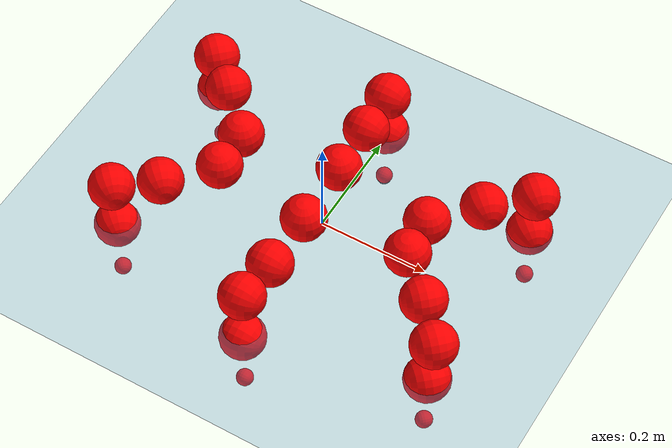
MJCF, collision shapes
<mujoco model="Golem">
  <compiler angle="radian" assetdir="assets" balanceinertia="true" inertiafromgeom="false"/>

  <option timestep="0.005" density="1.2" viscosity="2e-05"/>

  <size nkey="1"/>

  <visual>
    <quality shadowsize="8192"/>
    <map shadowclip="0.5"/>
  </visual>

  <default>
    <default class="/">
      <joint armature="0.01" damping="0.01" frictionloss="0.01"/>
      <geom contype="0" conaffinity="0" group="1" solref="-1000 -80"/>
      <site size="0.01 0.005 0.005" group="5"/>
      <general forcelimited="true" biastype="affine" gainprm="25" biasprm="0 -25 -0.5"/>
      <default class="visual">
        <geom type="mesh" group="2"/>
      </default>
      <default class="collision">
        <geom group="3"/>
      </default>
      <default class="foot">
        <geom size="0.01 0 0" condim="6" group="4" priority="1" solimp="0.015 1 0.01"/>
      </default>
      <default class="reward_collision_sphere">
        <geom group="5" rgba="1 0 0 1"/>
      </default>
    </default>
  </default>

  <asset>
    <texture type="skybox" colorspace="auto" name="//unnamed_texture_0" builtin="gradient" rgb1="0.95 0.95 0.95" rgb2="0.95 0.95 0.95" width="100" height="600"/>
    <texture type="2d" colorspace="auto" name="texplane" builtin="checker" rgb1="0.345 0.575 0.748" rgb2="0.345 0.575 0.748" markrgb="1 1 1" width="512" height="512"/>
    <material name="MatPlane" class="/" texture="texplane" texuniform="true" texrepeat="2 2" specular="0.9"/>
    <mesh name="body" class="/" file="body.stl" scale="0.001 0.001 0.001"/>
    <mesh name="coxa" class="/" file="coxa.stl" scale="0.001 0.001 0.001"/>
    <mesh name="femur" class="/" file="femur.stl" scale="0.001 0.001 0.001"/>
    <mesh name="tibia" class="/" file="tibia.stl" scale="0.001 0.001 0.001"/>
    <mesh name="tarsus" class="/" file="tarsus.stl" scale="0.001 0.001 0.001"/>
  </asset>

  <worldbody>
    <geom name="floor" class="/" size="100 100 0.125" type="plane" group="0" material="MatPlane"/>
    <light name="toplight_shadow" class="/" pos="0 0 5" dir="0.0990148 0.0990148 -0.990148" type="directional" ambient="0.04 0.04 0.04" diffuse="0.55 0.55 0.55" specular="0.12 0.12 0.12"/>
    <light name="toplight_fill" class="/" pos="0 0 5" dir="0.0990148 0.0990148 -0.990148" type="directional" castshadow="false" ambient="0.04 0.04 0.04" diffuse="0.3 0.3 0.3" specular="0.08 0.08 0.08"/>
    <body name="trunk" pos="0.000818284 0.00205388 0.00750899" quat="1 -0.000335376 0.000252376 2.20585e-05">
      <inertial pos="-0.00111677 -0.000396998 -0.00703084" quat="0.999836 0.00691092 -0.0160914 -0.00459296" mass="3.87796" diaginertia="0.0262141 0.002259 0.0202169"/>
      <joint name="//unnamed_joint_0" type="free"/>
      <geom name="//unnamed_geom_1" class="/" pos="0 0 0.0733138" quat="1 0 0 0" type="mesh" rgba="0.9 0.9 0.9 1" mesh="body"/>
      <site name="imu" class="/" pos="0.164232 -0.0107462 0.120212" size="0.0102478"/>
      <camera name="track" class="/" pos="0 -1.49153 0" quat="0.707107 0.707107 0 0" mode="trackcom"/>
      <camera name="ego_camera" class="/" pos="0.153796 0 0.114553" quat="-0.5 -0.5 0.5 0.5"/>
      <body name="coxa_RR" pos="-0.208229 -0.063723 0.0773799" quat="0.382514 -0.00043046 -0.000674174 -0.923949">
        <inertial pos="-0.000124457 0.00724901 0.002195" quat="0.999962 0.00541161 0.00156941 -0.00663032" mass="0.238335" diaginertia="0.0267837 0.00237675 0.022095"/>
        <joint name="coxa_joint_RR" class="/" pos="0 0 0" axis="-0.0434937 0.0107584 -0.998996" range="-3.1422 3.20016" armature="0.0112032" damping="0.0203699" frictionloss="0.011347"/>
        <geom name="//unnamed_geom_2" class="/" type="mesh" rgba="0.2 0.2 0.2 1" mesh="coxa"/>
        <geom name="//unnamed_geom_3" class="reward_collision_sphere" size="0.0409913" pos="-0.0354915 0 0"/>
        <body name="femur_RR" pos="0.0682574 0.00212741 -0.00720589" quat="0.50024 -0.500089 0.500412 0.499258">
          <inertial pos="-0.00177429 -0.00186564 0.00162668" quat="0.999998 0.000859136 -0.00166229 1.8535e-05" mass="0.206911" diaginertia="0.0223786 0.00226742 0.019368"/>
          <joint name="femur_joint_RR" class="/" pos="0 0 0" axis="0.000934199 0.000456857 -0.999999" stiffness="0.00342342" range="-3.11221 3.26644" armature="0.0117666" damping="0.0297028" frictionloss="0.00847417"/>
          <geom name="//unnamed_geom_4" class="/" type="mesh" rgba="0.9 0.9 0.9 1" mesh="femur"/>
          <geom name="//unnamed_geom_5" class="reward_collision_sphere" size="0.0409913"/>
          <body name="tibia_RR" pos="-0.0063346 -0.0837914 -0.00308823" quat="-5.65533e-05 1 0.00056379 -0.000382426">
            <inertial pos="0.00547666 0.00252002 -0.000223613" quat="0.9998 -0.0179614 0.00864036 0.00131477" mass="0.214828" diaginertia="0.0238361 0.00219281 0.0187477"/>
            <joint name="tibia_joint_RR" class="/" pos="0 0 0" axis="0.00694835 0.00160739 0.999975" range="-2.99853 3.1406" armature="0.012014" damping="0.0200465" frictionloss="0.0113534"/>
            <geom name="//unnamed_geom_6" class="/" type="mesh" rgba="0.2 0.2 0.2 1" mesh="tibia"/>
            <geom name="//unnamed_geom_7" class="reward_collision_sphere" size="0.0409913"/>
            <body name="tarsus_RR" pos="0.104023 -0.00213313 -0.00120555" quat="1 -0.000265832 0.000366977 -0.000396805">
              <inertial pos="0.0751603 -0.00606935 0.00361413" quat="0.50049 0.500195 0.499664 0.499651" mass="0.222676" diaginertia="0.0233793 0.00232272 0.0200565"/>
              <joint name="tarsus_joint_RR" class="/" pos="0 0 0" axis="0.00454748 -0.0101884 0.999938" stiffness="0.0385364" range="-3.09277 3.12632" armature="0.00810542" damping="0.0172786" frictionloss="0.00800455"/>
              <geom name="//unnamed_geom_8" class="/" type="mesh" rgba="0.9 0.9 0.9 1" mesh="tarsus"/>
              <geom name="foot_1" class="foot" size="0.0114012" pos="0.132502 0 0" quat="0 -0.707107 0 0.707107"/>
              <geom name="//unnamed_geom_10" class="reward_collision_sphere" size="0.0409913"/>
              <geom name="//unnamed_geom_11" class="reward_collision_sphere" size="0.0153717" pos="0.127178 0 0"/>
              <site name="foot_1" class="foot" pos="0.132502 0 0" quat="0 -0.707107 0 0.707107" size="0.0102478"/>
            </body>
          </body>
        </body>
      </body>
      <body name="coxa_RM" pos="-0.000720535 -0.0990645 0.0807295" quat="0.706998 -0.00157389 -0.00365939 -0.707204">
        <inertial pos="0.00563839 -0.000335465 0.000668145" quat="0.999945 0.00148816 -0.000145809 0.0104023" mass="0.223467" diaginertia="0.0251582 0.00241893 0.0194324"/>
        <joint name="coxa_joint_RM" class="/" pos="0 0 0" axis="-0.00298757 -0.000265579 -0.999996" stiffness="0.000930397" range="-2.97641 3.13475" armature="0.00979897" damping="0" frictionloss="0.00992018"/>
        <geom name="//unnamed_geom_12" class="/" type="mesh" rgba="0.2 0.2 0.2 1" mesh="coxa"/>
        <geom name="//unnamed_geom_13" class="reward_collision_sphere" size="0.0409913" pos="-0.0354915 0 0"/>
        <body name="femur_RM" pos="0.0723636 -0.000387082 -0.00141174" quat="0.498039 -0.499093 0.501677 0.501183">
          <inertial pos="-0.000909782 0.000109747 -0.000178244" quat="0.999592 0.0201839 0.0157758 0.0126373" mass="0.201166" diaginertia="0.0219718 0.00229086 0.0181035"/>
          <joint name="femur_joint_RM" class="/" pos="0 0 0" axis="-0.00979063 -0.000973586 -0.999952" stiffness="0.0360474" range="-3.16559 3.13146" armature="0.0113022" damping="0.018527" frictionloss="0.0103012"/>
          <geom name="//unnamed_geom_14" class="/" type="mesh" rgba="0.9 0.9 0.9 1" mesh="femur"/>
          <geom name="//unnamed_geom_15" class="reward_collision_sphere" size="0.0409913"/>
          <body name="tibia_RM" pos="0.00296907 -0.0773983 -0.00596203" quat="0.00061715 0.999999 -0.000529917 -0.000768528">
            <inertial pos="-0.00105328 -0.00882499 0.00207227" quat="0.999968 0.00516536 0.000940695 0.00598491" mass="0.197136" diaginertia="0.0214659 0.00209655 0.0175165"/>
            <joint name="tibia_joint_RM" class="/" pos="0 0 0" axis="0.00861752 -0.00626551 0.999943" range="-3.20603 3.31968" armature="0.0094185" damping="0.0389339" frictionloss="0.0112483"/>
            <geom name="//unnamed_geom_16" class="/" type="mesh" rgba="0.2 0.2 0.2 1" mesh="tibia"/>
            <geom name="//unnamed_geom_17" class="reward_collision_sphere" size="0.0409913"/>
            <body name="tarsus_RM" pos="0.10942 0.00632215 -0.00152209" quat="0.999998 -0.000158799 -0.000654936 -0.0017234">
              <inertial pos="0.0708418 -0.00767554 0.000410875" quat="0.499768 0.49978 0.50073 0.499722" mass="0.247885" diaginertia="0.0241033 0.00246069 0.0208928"/>
              <joint name="tarsus_joint_RM" class="/" pos="0 0 0" axis="-0.00893262 0.00111486 0.999959" range="-3.16426 3.10373" armature="0.00916712" damping="0" frictionloss="0.00998112"/>
              <geom name="//unnamed_geom_18" class="/" type="mesh" rgba="0.9 0.9 0.9 1" mesh="tarsus"/>
              <geom name="foot_2" class="foot" size="0.0102564" pos="0.132502 0 0" quat="0 -0.707107 0 0.707107"/>
              <geom name="//unnamed_geom_20" class="reward_collision_sphere" size="0.0409913"/>
              <geom name="//unnamed_geom_21" class="reward_collision_sphere" size="0.0153717" pos="0.127178 0 0"/>
              <site name="foot_2" class="foot" pos="0.132502 0 0" quat="0 -0.707107 0 0.707107" size="0.0102478"/>
            </body>
          </body>
        </body>
      </body>
      <body name="coxa_RF" pos="0.208199 -0.0622114 0.0791563" quat="0.923494 -0.0003309 -0.000809592 -0.383612">
        <inertial pos="0.00616811 0.00155069 -0.00480474" quat="0.999953 0.00969956 0.000537943 -0.000310734" mass="0.192838" diaginertia="0.0212785 0.00228042 0.0181715"/>
        <joint name="coxa_joint_RF" class="/" pos="0 0 0" axis="-0.00489834 0.00992663 -0.999939" range="-3.09563 3.13839" armature="0.0127783" damping="0" frictionloss="0.00895051"/>
        <geom name="//unnamed_geom_22" class="/" type="mesh" rgba="0.2 0.2 0.2 1" mesh="coxa"/>
        <geom name="//unnamed_geom_23" class="reward_collision_sphere" size="0.0409913" pos="-0.0354915 0 0"/>
        <body name="femur_RF" pos="0.0632542 -0.000628899 0.00323635" quat="0.499397 -0.499443 0.502455 0.498697">
          <inertial pos="-0.00204998 0.00072219 0.0019989" quat="0.999943 0.00531416 -0.0092078 0.000789139" mass="0.253795" diaginertia="0.0233854 0.00252868 0.0223801"/>
          <joint name="femur_joint_RF" class="/" pos="0 0 0" axis="0.00397981 0.00792715 -0.999961" stiffness="0.0389091" range="-3.14173 3.2771" armature="0.0143738" damping="0.0184038" frictionloss="0.0144295"/>
          <geom name="//unnamed_geom_24" class="/" type="mesh" rgba="0.9 0.9 0.9 1" mesh="femur"/>
          <geom name="//unnamed_geom_25" class="reward_collision_sphere" size="0.0409913"/>
          <body name="tibia_RF" pos="0.000420581 -0.0878586 -0.00759359" quat="0.000215024 1 0.000181361 -7.23448e-05">
            <inertial pos="0.00641513 -0.00124688 0.000598967" quat="0.999952 0.00446289 -0.00112504 0.00862765" mass="0.22856" diaginertia="0.0252865 0.00238503 0.020427"/>
            <joint name="tibia_joint_RF" class="/" pos="0 0 0" axis="-0.00726957 -0.00279646 0.99997" stiffness="0.00442492" range="-3.1917 3.17302" armature="0.0107755" damping="0.0350383" frictionloss="0.00916686"/>
            <geom name="//unnamed_geom_26" class="/" type="mesh" rgba="0.2 0.2 0.2 1" mesh="tibia"/>
            <geom name="//unnamed_geom_27" class="reward_collision_sphere" size="0.0409913"/>
            <body name="tarsus_RF" pos="0.101356 -0.00119688 0.00619308" quat="0.999998 -0.00152976 -0.000148217 0.000913046">
              <inertial pos="0.0767427 0.00209007 -0.00178858" quat="0.521908 0.51954 0.470341 0.486282" mass="0.223048" diaginertia="0.0236242 0.00224297 0.0219463"/>
              <joint name="tarsus_joint_RF" class="/" pos="0 0 0" axis="-0.00808677 0.00259488 0.999964" stiffness="0.00497354" range="-3.1651 3.12921" armature="0.0138577" damping="0.00672612" frictionloss="0.0130408"/>
              <geom name="//unnamed_geom_28" class="/" type="mesh" rgba="0.9 0.9 0.9 1" mesh="tarsus"/>
              <geom name="foot_3" class="foot" size="0.0101169" pos="0.132502 0 0" quat="0 -0.707107 0 0.707107"/>
              <geom name="//unnamed_geom_30" class="reward_collision_sphere" size="0.0409913"/>
              <geom name="//unnamed_geom_31" class="reward_collision_sphere" size="0.0153717" pos="0.127178 0 0"/>
              <site name="foot_3" class="foot" pos="0.132502 0 0" quat="0 -0.707107 0 0.707107" size="0.0102478"/>
            </body>
          </body>
        </body>
      </body>
      <body name="coxa_LR" pos="-0.21218 0.0621368 0.0789439" quat="0.38223 -0.000243003 0.000190536 0.924067">
        <inertial pos="0.000156144 0.000739859 -0.00146322" quat="0.999344 0.00106639 -0.00544118 0.0357819" mass="0.206762" diaginertia="0.0233311 0.00210096 0.0196009"/>
        <joint name="coxa_joint_LR" class="/" pos="0 0 0" axis="0.00136809 0.00149374 -0.999998" range="-3.1611 3.12017" armature="0.00771118" damping="0.0225078" frictionloss="0.0103565"/>
        <geom name="//unnamed_geom_32" class="/" type="mesh" rgba="0.2 0.2 0.2 1" mesh="coxa"/>
        <geom name="//unnamed_geom_33" class="reward_collision_sphere" size="0.0409913" pos="-0.0354915 0 0"/>
        <body name="femur_LR" pos="0.075169 -0.00251226 -0.00460213" quat="0.498611 -0.499875 0.501119 0.500392">
          <inertial pos="0.00534335 0.00692994 -0.00688983" quat="0.999999 0.000129248 0.000842648 -0.000638051" mass="0.193307" diaginertia="0.0223274 0.0020927 0.0192371"/>
          <joint name="femur_joint_LR" class="/" pos="0 0 0" axis="-0.03703 0.00966365 0.999267" stiffness="0.00683584" range="-3.07059 3.2216" armature="0.00560923" damping="0.0241536" frictionloss="0.0129383"/>
          <geom name="//unnamed_geom_34" class="/" type="mesh" rgba="0.9 0.9 0.9 1" mesh="femur"/>
          <geom name="//unnamed_geom_35" class="reward_collision_sphere" size="0.0409913"/>
          <body name="tibia_LR" pos="-0.000440404 -0.076735 0.00298372" quat="0.0012366 0.999999 0.000231216 2.65151e-05">
            <inertial pos="-0.000186516 0.00694721 -0.000825104" quat="0.999975 0.00537754 -0.00462428 0.000652391" mass="0.23666" diaginertia="0.0249183 0.00235675 0.0225467"/>
            <joint name="tibia_joint_LR" class="/" pos="0 0 0" axis="-0.0194679 0.0255485 -0.999484" stiffness="0.0308942" range="-3.13739 3.26153" armature="0.0100198" damping="0.024357" frictionloss="0.00852015"/>
            <geom name="//unnamed_geom_36" class="/" type="mesh" rgba="0.2 0.2 0.2 1" mesh="tibia"/>
            <geom name="//unnamed_geom_37" class="reward_collision_sphere" size="0.0409913"/>
            <body name="tarsus_LR" pos="0.0957038 0.00637837 0.00250041" quat="0.999999 -0.00123478 0.000668923 -0.000672243">
              <inertial pos="0.0709986 -0.000463502 0.00430408" quat="0.496939 0.494018 0.50299 0.505963" mass="0.222935" diaginertia="0.0236382 0.00224448 0.0200935"/>
              <joint name="tarsus_joint_LR" class="/" pos="0 0 0" axis="-0.0204847 0.00772779 -0.99976" stiffness="0.0107054" range="-3.05458 3.10307" armature="0.0129931" damping="0.0299446" frictionloss="0.00931784"/>
              <geom name="//unnamed_geom_38" class="/" type="mesh" rgba="0.9 0.9 0.9 1" mesh="tarsus"/>
              <geom name="foot_4" class="foot" size="0.0104066" pos="0.132502 0 0" quat="0.707107 0 -0.707107 0"/>
              <geom name="//unnamed_geom_40" class="reward_collision_sphere" size="0.0409913"/>
              <geom name="//unnamed_geom_41" class="reward_collision_sphere" size="0.0153717" pos="0.127178 0 0"/>
              <site name="foot_4" class="foot" pos="0.132502 0 0" quat="0.707107 0 -0.707107 0" size="0.0102478"/>
            </body>
          </body>
        </body>
      </body>
      <body name="coxa_LM" pos="-0.00739831 0.100372 0.0713272" quat="0.70685 0.000358922 0.000408693 0.707364">
        <inertial pos="-0.00256032 0.000367315 0.00013301" quat="0.999971 -0.000131431 -0.00407931 0.00643337" mass="0.223452" diaginertia="0.0211693 0.00226869 0.0194545"/>
        <joint name="coxa_joint_LM" class="/" pos="0 0 0" axis="-0.0315046 -0.00325887 -0.999498" stiffness="0.00254368" range="-3.15471 2.97753" armature="0.0103333" damping="0.0210688" frictionloss="0.00981671"/>
        <geom name="//unnamed_geom_42" class="/" type="mesh" rgba="0.2 0.2 0.2 1" mesh="coxa"/>
        <geom name="//unnamed_geom_43" class="reward_collision_sphere" size="0.0409913" pos="-0.0354915 0 0"/>
        <body name="femur_LM" pos="0.0612673 0.00239848 0.00166695" quat="0.499359 -0.49919 0.499026 0.502417">
          <inertial pos="-0.00389808 -0.00219201 0.00329581" quat="0.99998 0.00300894 -0.00562993 -0.000301953" mass="0.185042" diaginertia="0.0214189 0.00215606 0.0175373"/>
          <joint name="femur_joint_LM" class="/" pos="0 0 0" axis="-0.00444122 0.0209495 0.999771" range="-3.0061 3.27037" armature="0.0104272" damping="0" frictionloss="0.00852466"/>
          <geom name="//unnamed_geom_44" class="/" type="mesh" rgba="0.9 0.9 0.9 1" mesh="femur"/>
          <geom name="//unnamed_geom_45" class="reward_collision_sphere" size="0.0409913"/>
          <body name="tibia_LM" pos="-0.00171834 -0.0815896 0.00344187" quat="-0.000251782 1 0.00027701 0.000206538">
            <inertial pos="-0.00328989 -0.00165319 0.00162622" quat="1 3.05766e-05 1.06985e-05 -0.000106778" mass="0.208117" diaginertia="0.022238 0.00246785 0.0186223"/>
            <joint name="tibia_joint_LM" class="/" pos="0 0 0" axis="-0.0011872 0.0161178 -0.999869" stiffness="0.0439175" range="-3.17307 3.1529" armature="0.0135516" damping="0.0343505" frictionloss="0.0094674"/>
            <geom name="//unnamed_geom_46" class="/" type="mesh" rgba="0.2 0.2 0.2 1" mesh="tibia"/>
            <geom name="//unnamed_geom_47" class="reward_collision_sphere" size="0.0409913"/>
            <body name="tarsus_LM" pos="0.0980994 0.00013631 0.000899328" quat="1 -0.000108011 0.000364551 -3.40728e-05">
              <inertial pos="0.0702445 -0.000625431 -0.00479331" quat="0.496112 0.49885 0.500026 0.504971" mass="0.218161" diaginertia="0.0255187 0.00217441 0.0196422"/>
              <joint name="tarsus_joint_LM" class="/" pos="0 0 0" axis="0.017018 -0.00055908 -0.999855" stiffness="0.0189737" range="-3.15043 3.18096" armature="0.00928644" damping="0" frictionloss="0.0104342"/>
              <geom name="//unnamed_geom_48" class="/" type="mesh" rgba="0.9 0.9 0.9 1" mesh="tarsus"/>
              <geom name="foot_5" class="foot" size="0.0135768" pos="0.132502 0 0" quat="0.707107 0 -0.707107 0"/>
              <geom name="//unnamed_geom_50" class="reward_collision_sphere" size="0.0409913"/>
              <geom name="//unnamed_geom_51" class="reward_collision_sphere" size="0.0153717" pos="0.127178 0 0"/>
              <site name="foot_5" class="foot" pos="0.132502 0 0" quat="0.707107 0 -0.707107 0" size="0.0102478"/>
            </body>
          </body>
        </body>
      </body>
      <body name="coxa_LF" pos="0.203183 0.0638147 0.0770093" quat="0.923962 0.000895925 -0.00332344 0.382468">
        <inertial pos="0.000173914 0.00138465 -0.00459496" quat="0.999987 0.00422618 0.0011808 -0.0025447" mass="0.215921" diaginertia="0.0224911 0.0025829 0.0199651"/>
        <joint name="coxa_joint_LF" class="/" pos="0 0 0" axis="0.0259023 0.0015553 -0.999663" stiffness="0.00092083" range="-3.10251 3.18367" armature="0.0112439" damping="0.018649" frictionloss="0.0128112"/>
        <geom name="//unnamed_geom_52" class="/" type="mesh" rgba="0.2 0.2 0.2 1" mesh="coxa"/>
        <geom name="//unnamed_geom_53" class="reward_collision_sphere" size="0.0409913" pos="-0.0354915 0 0"/>
        <body name="femur_LF" pos="0.0653304 0.00469624 0.0013501" quat="0.499934 -0.500181 0.499998 0.499886">
          <inertial pos="-0.00019797 0.00135303 -0.00670697" quat="0.99986 0.0142112 -0.00145272 0.00871648" mass="0.192265" diaginertia="0.0246486 0.00229124 0.0197472"/>
          <joint name="femur_joint_LF" class="/" pos="0 0 0" axis="0.0109832 -0.0179028 0.999779" range="-3.09549 3.15193" armature="0.0098306" damping="0.0147288" frictionloss="0.00725629"/>
          <geom name="//unnamed_geom_54" class="/" type="mesh" rgba="0.9 0.9 0.9 1" mesh="femur"/>
          <geom name="//unnamed_geom_55" class="reward_collision_sphere" size="0.0409913"/>
          <body name="tibia_LF" pos="-0.00160139 -0.0899486 -0.00513588" quat="0.00189733 0.999993 -0.00146716 -0.00279648">
            <inertial pos="0.00193329 -0.00311909 0.0046507" quat="0.999371 0.0183555 -0.0207316 -0.0221614" mass="0.197355" diaginertia="0.0217356 0.00227559 0.0195733"/>
            <joint name="tibia_joint_LF" class="/" pos="0 0 0" axis="0.000639971 -0.000608044 -1" stiffness="0.0266" range="-3.3158 3.12183" armature="0.00918927" damping="0" frictionloss="0.0102444"/>
            <geom name="//unnamed_geom_56" class="/" type="mesh" rgba="0.2 0.2 0.2 1" mesh="tibia"/>
            <geom name="//unnamed_geom_57" class="reward_collision_sphere" size="0.0409913"/>
            <body name="tarsus_LF" pos="0.0961785 -0.00489884 -0.000556966" quat="1 1.44437e-05 0.000653716 -0.00022614">
              <inertial pos="0.078629 0.000121127 0.00092098" quat="0.498053 0.502468 0.499101 0.500367" mass="0.231434" diaginertia="0.0247496 0.00248807 0.0187571"/>
              <joint name="tarsus_joint_LF" class="/" pos="0 0 0" axis="-0.0249012 -0.0141142 -0.99959" stiffness="0.024806" range="-3.13929 3.23822" armature="0.0068849" damping="0.0111015" frictionloss="0.00594107"/>
              <geom name="//unnamed_geom_58" class="/" type="mesh" rgba="0.9 0.9 0.9 1" mesh="tarsus"/>
              <geom name="foot_6" class="foot" size="0.010773" pos="0.132502 0 0" quat="0.707107 0 -0.707107 0"/>
              <geom name="//unnamed_geom_60" class="reward_collision_sphere" size="0.0409913"/>
              <geom name="//unnamed_geom_61" class="reward_collision_sphere" size="0.0153717" pos="0.127178 0 0"/>
              <site name="foot_6" class="foot" pos="0.132502 0 0" quat="0.707107 0 -0.707107 0" size="0.0102478"/>
            </body>
          </body>
        </body>
      </body>
    </body>
  </worldbody>

  <contact>
    <pair class="/" geom1="floor" geom2="foot_1" name="//unnamed_contact_0"/>
    <pair class="/" geom1="floor" geom2="foot_2" name="//unnamed_contact_1"/>
    <pair class="/" geom1="floor" geom2="foot_3" name="//unnamed_contact_2"/>
    <pair class="/" geom1="floor" geom2="foot_4" name="//unnamed_contact_3"/>
    <pair class="/" geom1="floor" geom2="foot_5" name="//unnamed_contact_4"/>
    <pair class="/" geom1="floor" geom2="foot_6" name="//unnamed_contact_5"/>
  </contact>

  <actuator>
    <general name="coxa_joint_RR" class="/" joint="coxa_joint_RR" forcerange="-6.75132 6.75132" gainprm="25.6436" biasprm="0 -25.6436 -0.523815"/>
    <general name="femur_joint_RR" class="/" joint="femur_joint_RR" forcerange="-6.38516 6.38516" gainprm="25.6436" biasprm="0 -25.6436 -0.523815"/>
    <general name="tibia_joint_RR" class="/" joint="tibia_joint_RR" forcerange="-8.68043 8.68043" gainprm="25.6436" biasprm="0 -25.6436 -0.523815"/>
    <general name="tarsus_joint_RR" class="/" joint="tarsus_joint_RR" forcerange="-8.87941 8.87941" gainprm="25.6436" biasprm="0 -25.6436 -0.523815"/>
    <general name="coxa_joint_RM" class="/" joint="coxa_joint_RM" forcerange="-9.35073 9.35073" gainprm="25.6436" biasprm="0 -25.6436 -0.523815"/>
    <general name="femur_joint_RM" class="/" joint="femur_joint_RM" forcerange="-8.00557 8.00557" gainprm="25.6436" biasprm="0 -25.6436 -0.523815"/>
    <general name="tibia_joint_RM" class="/" joint="tibia_joint_RM" forcerange="-7.23763 7.23763" gainprm="25.6436" biasprm="0 -25.6436 -0.523815"/>
    <general name="tarsus_joint_RM" class="/" joint="tarsus_joint_RM" forcerange="-6.94853 6.94853" gainprm="25.6436" biasprm="0 -25.6436 -0.523815"/>
    <general name="coxa_joint_RF" class="/" joint="coxa_joint_RF" forcerange="-8.08091 8.08091" gainprm="25.6436" biasprm="0 -25.6436 -0.523815"/>
    <general name="femur_joint_RF" class="/" joint="femur_joint_RF" forcerange="-5.04977 5.04977" gainprm="25.6436" biasprm="0 -25.6436 -0.523815"/>
    <general name="tibia_joint_RF" class="/" joint="tibia_joint_RF" forcerange="-5.52431 5.52431" gainprm="25.6436" biasprm="0 -25.6436 -0.523815"/>
    <general name="tarsus_joint_RF" class="/" joint="tarsus_joint_RF" forcerange="-5.73879 5.73879" gainprm="25.6436" biasprm="0 -25.6436 -0.523815"/>
    <general name="coxa_joint_LR" class="/" joint="coxa_joint_LR" forcerange="-7.31168 7.31168" gainprm="25.6436" biasprm="0 -25.6436 -0.523815"/>
    <general name="femur_joint_LR" class="/" joint="femur_joint_LR" forcerange="-7.76309 7.76309" gainprm="25.6436" biasprm="0 -25.6436 -0.523815"/>
    <general name="tibia_joint_LR" class="/" joint="tibia_joint_LR" forcerange="-5.16391 5.16391" gainprm="25.6436" biasprm="0 -25.6436 -0.523815"/>
    <general name="tarsus_joint_LR" class="/" joint="tarsus_joint_LR" forcerange="-5.52501 5.52501" gainprm="25.6436" biasprm="0 -25.6436 -0.523815"/>
    <general name="coxa_joint_LM" class="/" joint="coxa_joint_LM" forcerange="-8.02826 8.02826" gainprm="25.6436" biasprm="0 -25.6436 -0.523815"/>
    <general name="femur_joint_LM" class="/" joint="femur_joint_LM" forcerange="-6.87671 6.87671" gainprm="25.6436" biasprm="0 -25.6436 -0.523815"/>
    <general name="tibia_joint_LM" class="/" joint="tibia_joint_LM" forcerange="-7.43267 7.43267" gainprm="25.6436" biasprm="0 -25.6436 -0.523815"/>
    <general name="tarsus_joint_LM" class="/" joint="tarsus_joint_LM" forcerange="-7.53168 7.53168" gainprm="25.6436" biasprm="0 -25.6436 -0.523815"/>
    <general name="coxa_joint_LF" class="/" joint="coxa_joint_LF" forcerange="-7.5676 7.5676" gainprm="25.6436" biasprm="0 -25.6436 -0.523815"/>
    <general name="femur_joint_LF" class="/" joint="femur_joint_LF" forcerange="-5.81949 5.81949" gainprm="25.6436" biasprm="0 -25.6436 -0.523815"/>
    <general name="tibia_joint_LF" class="/" joint="tibia_joint_LF" forcerange="-6.01962 6.01962" gainprm="25.6436" biasprm="0 -25.6436 -0.523815"/>
    <general name="tarsus_joint_LF" class="/" joint="tarsus_joint_LF" forcerange="-8.07782 8.07782" gainprm="25.6436" biasprm="0 -25.6436 -0.523815"/>
  </actuator>

  <sensor>
    <gyro site="imu" name="imu_angular_velocity"/>
    <velocimeter site="imu" name="imu_linear_velocity"/>
    <framelinvel objtype="site" objname="foot_1" name="foot_1_global_linear_velocity"/>
    <framelinvel objtype="site" objname="foot_2" name="foot_2_global_linear_velocity"/>
    <framelinvel objtype="site" objname="foot_3" name="foot_3_global_linear_velocity"/>
    <framelinvel objtype="site" objname="foot_4" name="foot_4_global_linear_velocity"/>
    <framelinvel objtype="site" objname="foot_5" name="foot_5_global_linear_velocity"/>
    <framelinvel objtype="site" objname="foot_6" name="foot_6_global_linear_velocity"/>
  </sensor>

  <keyframe>
    <key name="home" qpos="0 0 0.1457 1 0 0 0 0 0 0 0 0 0 0 0 0 0 0 0 0 0 0 0 0 0 0 0 0 0 0 0"/>
  </keyframe>
</mujoco>
